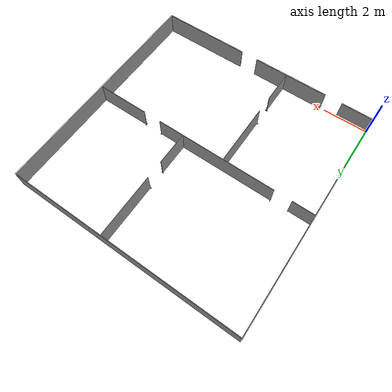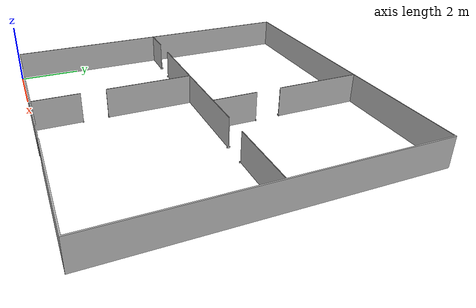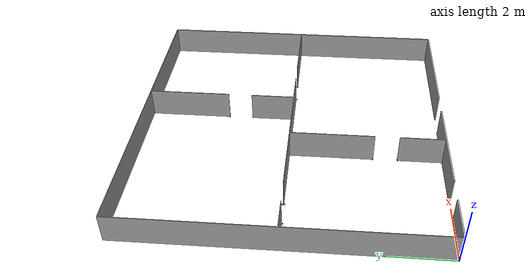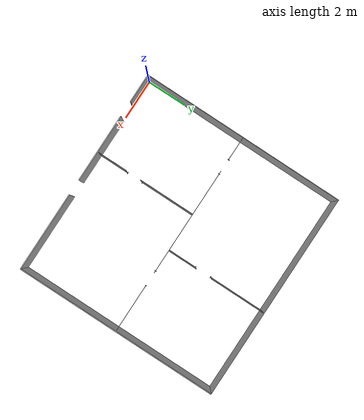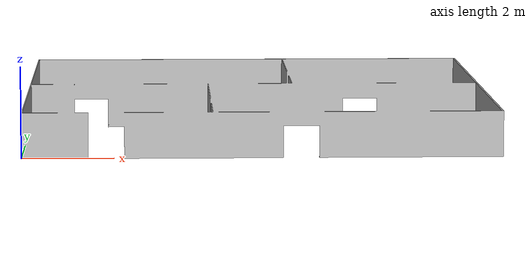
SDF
<?xml version="1.0" ?>
<sdf version="1.6">
  <model name="rpo2023/walls">
    <static>true</static>
    <link name="1_link">
      <collision name="1_col">
        <geometry>
          <mesh>
            <uri>model://rpo2023/walls/shape/heightmap_cml.stl</uri>
          </mesh>
        </geometry>
      </collision>
      <visual name="1_vis">
        <geometry>
          <mesh>
            <uri>model://rpo2023/walls/shape/heightmap_cml.stl</uri>
          </mesh>
        </geometry>
      </visual>
      <pose>0 0 0 0 0 0</pose>
    </link>
  </model>
</sdf>
